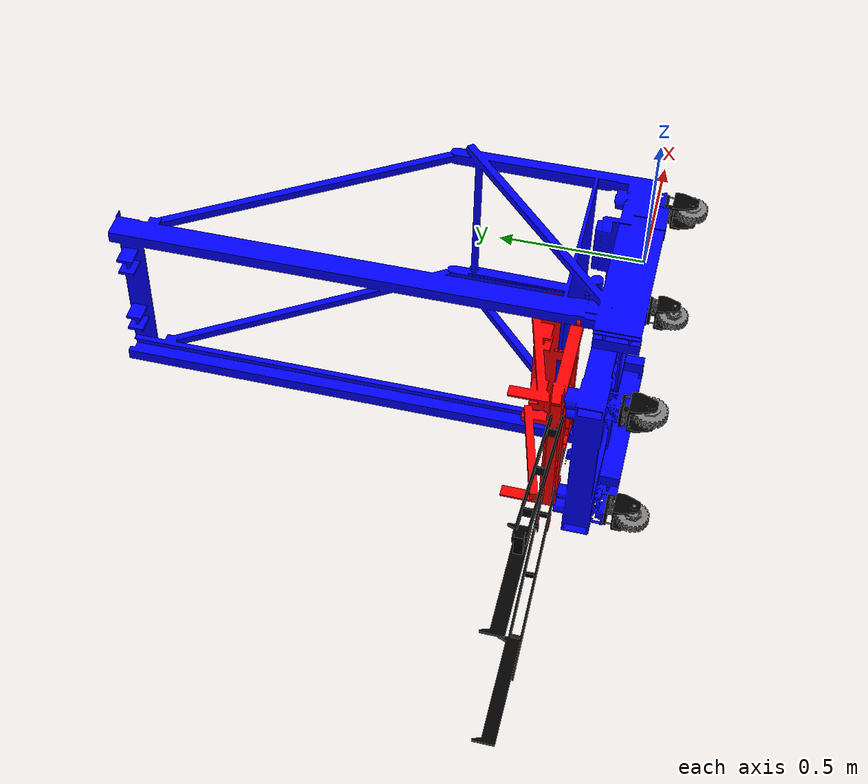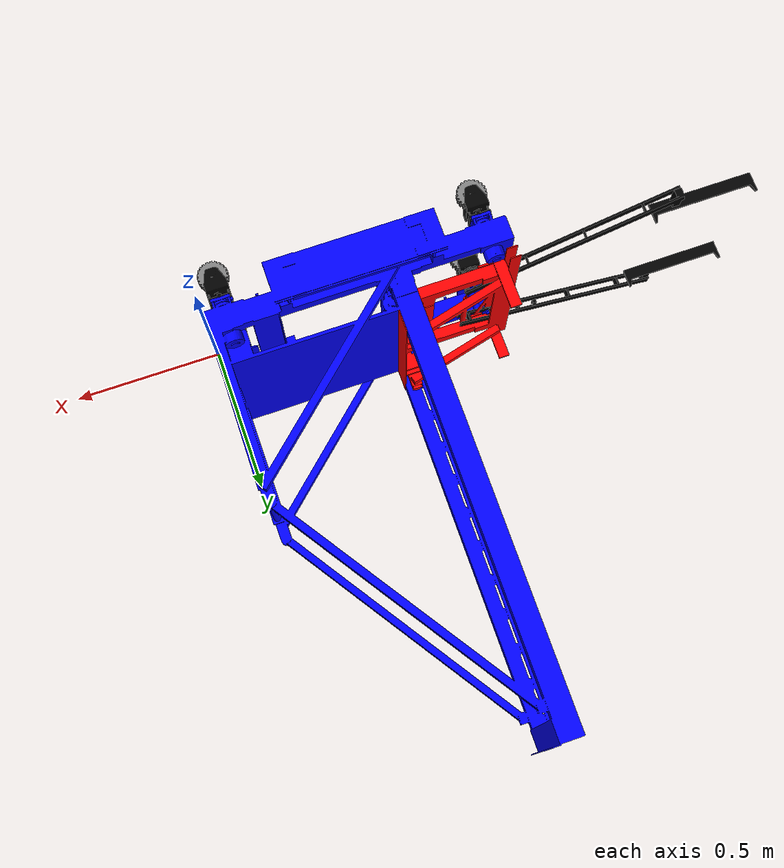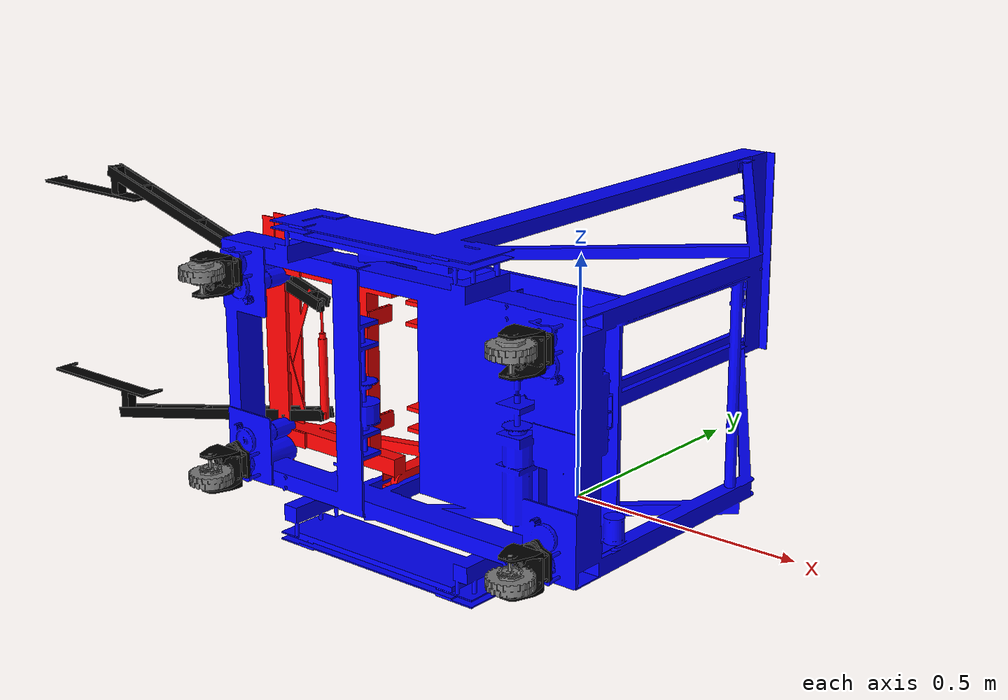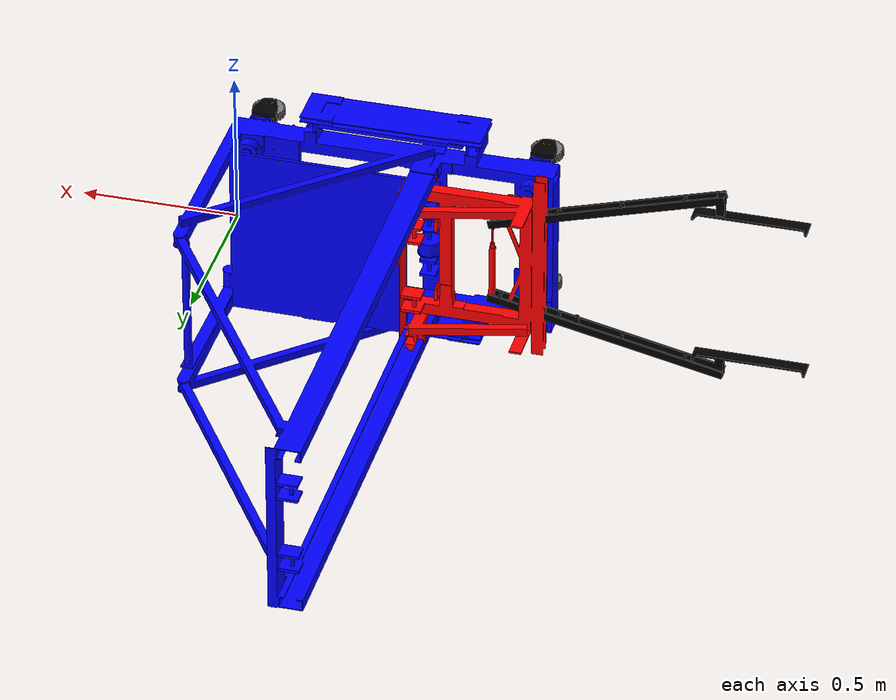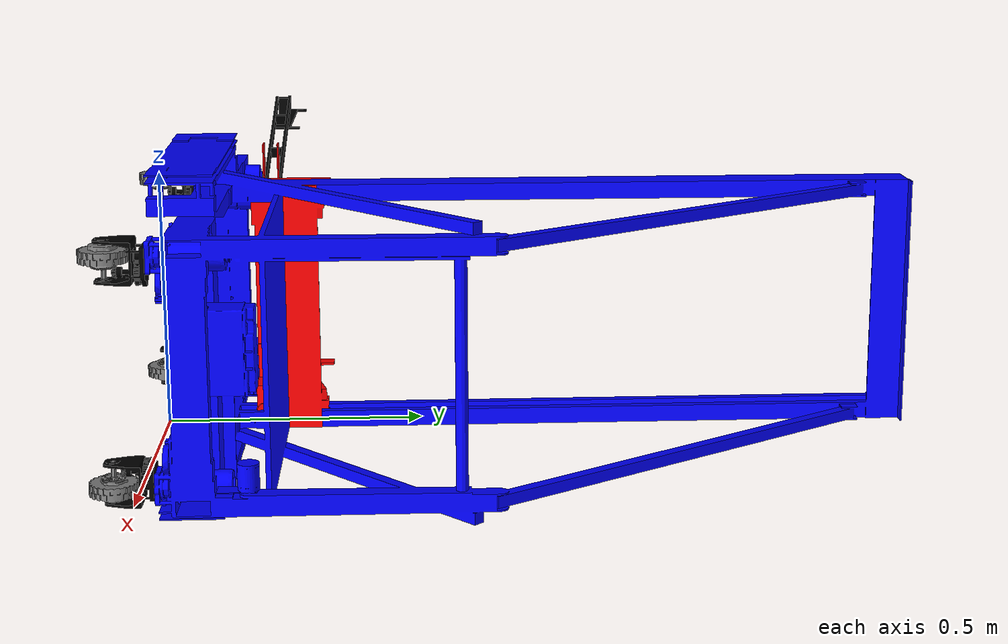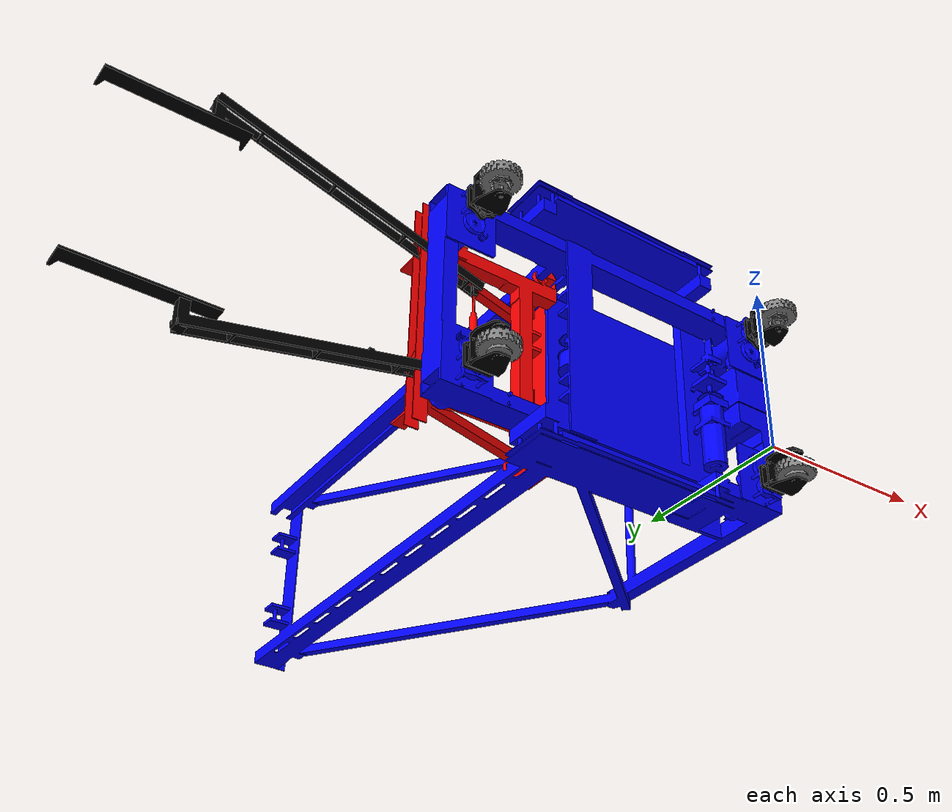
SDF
<?xml version="1.0" encoding="utf-8"?>
<sdf version="1.5">
  <model name="2015-Robot">
    <pose>0 0 -0.205244741154153 0 0 0</pose>
    <plugin name="clock" filename="libclock.so">
      <topic>/gazebo/frc/time</topic>
    </plugin>
    <link name="Chassis">
      <gravity>1</gravity>
      <self_collide>0</self_collide>
      <pose>-0.401025500465737 0.230776991603709 0.286644381625399 0 0 0</pose>
      <must_be_base_link>1</must_be_base_link>
      <velocity_decay>
        <linear>0</linear>
        <angular>0</angular>
      </velocity_decay>
      <inertial>
        <mass>63.5665306425937</mass>
        <pose>0 0 0 0 0 0</pose>
        <inertia>
          <ixx>12.3422869983664</ixx>
          <ixy>0.144478033171119</ixy>
          <ixz>0.0351416687291587</ixz>
          <iyy>9.97756819183086</iyy>
          <iyz>0.0194041878028764</iyz>
          <izz>15.7849892429057</izz>
        </inertia>
      </inertial>
      <collision name="Chassis_collision">
        <pose>-0.582059564363616 -0.323087667293095 0.371697829264734 0 0 0</pose>
        <geometry>
          <mesh>
            <scale>1 1 1</scale>
            <uri>model://2015-Robot/meshes/Chassis_col.STL</uri>
          </mesh>
        </geometry>
        <surface>
          <contact>
            <ode />
          </contact>
          <friction>
            <ode>
              <mu>0</mu>
              <mu2>0</mu2>
            </ode>
          </friction>
        </surface>
      </collision>
      <visual name="Chassis_visual">
        <pose>-0.582059564363616 -0.323087667293095 0.371697829264734 0 0 0</pose>
        <material>
          <ambient>0 0 1 1</ambient>
          <diffuse>0 0 1 1</diffuse>
        </material>
        <geometry>
          <mesh>
            <scale>1 1 1</scale>
            <uri>model://2015-Robot/meshes/Chassis.STL</uri>
          </mesh>
        </geometry>
      </visual>
      <sensor name="ChassisUltrasonic" type="sonar">
        <always_on>1</always_on>
        <visualize>1</visualize>
        <pose>-0.625093566490494 -0.216338403469202 0.0121117011848754 1.57079632679492 0 1.5707963267949</pose>
        <sonar>
          <min>0</min>
          <max>2</max>
          <radius>0.12</radius>
        </sonar>
      </sensor>
    </link>
    <link name="LFPivot">
      <gravity>1</gravity>
      <self_collide>0</self_collide>
      <pose>-0.95870454858405 -0.0736713957466903 0.512629032997598 0 0 0</pose>
      <must_be_base_link>0</must_be_base_link>
      <velocity_decay>
        <linear>0</linear>
        <angular>0</angular>
      </velocity_decay>
      <inertial>
        <mass>1.44739278538339</mass>
        <pose>0 0 0 0 0 0</pose>
        <inertia>
          <ixx>0.00233676058796664</ixx>
          <ixy>6.15567615603567E-07</ixy>
          <ixz>7.63616124093722E-06</ixz>
          <iyy>0.00181599181965529</iyy>
          <iyz>6.17355468187915E-05</iyz>
          <izz>0.00157703325312505</izz>
        </inertia>
      </inertial>
      <collision name="LFPivot_collision">
        <pose>-0.0243805162453027 -0.0186392799426959 0.145713177892535 0 0 0</pose>
        <geometry>
          <mesh>
            <scale>1 1 1</scale>
            <uri>model://2015-Robot/meshes/LFPivot_col.STL</uri>
          </mesh>
        </geometry>
        <surface>
          <contact>
            <ode />
          </contact>
          <friction>
            <ode>
              <mu>0</mu>
              <mu2>0</mu2>
            </ode>
          </friction>
        </surface>
      </collision>
      <visual name="LFPivot_visual">
        <pose>-0.0243805162453027 -0.0186392799426959 0.145713177892535 0 0 0</pose>
        <material>
          <ambient>0 0 0 1</ambient>
          <diffuse>0 0 0 1</diffuse>
        </material>
        <geometry>
          <mesh>
            <scale>1 1 1</scale>
            <uri>model://2015-Robot/meshes/LFPivot.STL</uri>
          </mesh>
        </geometry>
      </visual>
    </link>
    <joint name="Chassis-LFPivot" type="revolute">
      <parent>Chassis</parent>
      <child>LFPivot</child>
      <pose>-0.000145451415950387 0.0438263957466912 0.0144209670024015 0 0 1.5707963267949</pose>
      <axis>
        <xyz>1 -3.85032727000361E-16 0</xyz>
        <dynamics>
          <damping>2</damping>
          <friction>1</friction>
        </dynamics>
        <limit>
          <effort>200</effort>
        </limit>
      </axis>
    </joint>
    <link name="LFWheel">
      <gravity>1</gravity>
      <self_collide>0</self_collide>
      <pose>-0.958861217170619 -0.127825222544386 0.528166733571689 0 0 0</pose>
      <must_be_base_link>0</must_be_base_link>
      <velocity_decay>
        <linear>0</linear>
        <angular>0</angular>
      </velocity_decay>
      <inertial>
        <mass>1.8555319646432</mass>
        <pose>0 0 0 0 0 0</pose>
        <inertia>
          <ixx>0.00118622871860514</ixx>
          <ixy>6.74556798881706E-10</ixy>
          <ixz>7.21215725396255E-06</ixz>
          <iyy>0.00118617044109406</iyy>
          <iyz>3.52253400263471E-08</iyz>
          <izz>0.00190657662977929</izz>
        </inertia>
      </inertial>
      <collision name="LFWheel_collision">
        <pose>-0.0242238476587333 0.0355145468549995 0.130175477318445 0 0 0</pose>
        <geometry>
          <mesh>
            <scale>1 1 1</scale>
            <uri>model://2015-Robot/meshes/LFWheel_col.STL</uri>
          </mesh>
        </geometry>
        <surface>
          <contact>
            <ode />
          </contact>
          <friction>
            <ode>
              <mu>1</mu>
              <mu2>1</mu2>
            </ode>
          </friction>
        </surface>
      </collision>
      <visual name="LFWheel_visual">
        <pose>-0.0242238476587333 0.0355145468549995 0.130175477318445 0 0 0</pose>
        <material>
          <ambient>0.501960784313725 0.501960784313725 0.501960784313725 1</ambient>
          <diffuse>0.501960784313725 0.501960784313725 0.501960784313725 1</diffuse>
        </material>
        <geometry>
          <mesh>
            <scale>1 1 1</scale>
            <uri>model://2015-Robot/meshes/LFWheel.STL</uri>
          </mesh>
        </geometry>
      </visual>
    </link>
    <joint name="LFPivot-LFWheel" type="revolute">
      <parent>LFPivot</parent>
      <child>LFWheel</child>
      <pose>-2.69362340808363E-06 -2.77455613595379E-07 0.000273096813577206 0 1.56078767417446 3.14159265358979</pose>
      <axis>
        <xyz>0.999799660435128 1.09617717515883E-15 -0.0200159684702737</xyz>
        <dynamics>
          <damping>1</damping>
          <friction>1</friction>
        </dynamics>
        <limit>
          <effort>100</effort>
        </limit>
      </axis>
    </joint>
    <link name="RFPivot">
      <gravity>1</gravity>
      <self_collide>0</self_collide>
      <pose>-0.958995053722582 -0.0736748369935368 0.0588735140965105 0 0 0</pose>
      <must_be_base_link>0</must_be_base_link>
      <velocity_decay>
        <linear>0</linear>
        <angular>0</angular>
      </velocity_decay>
      <inertial>
        <mass>1.4475795191339</mass>
        <pose>0 0 0 0 0 0</pose>
        <inertia>
          <ixx>0.0023369686508179</ixx>
          <ixy>6.30923439869121E-07</ixy>
          <ixz>7.62480866374576E-06</ixz>
          <iyy>0.00181606645789441</iyy>
          <iyz>6.16372020802289E-05</iyz>
          <izz>0.00157717026566569</izz>
        </inertia>
      </inertial>
      <collision name="RFPivot_collision">
        <pose>-0.0240900111067707 -0.0186358386958493 0.599468696793623 0 0 0</pose>
        <geometry>
          <mesh>
            <scale>1 1 1</scale>
            <uri>model://2015-Robot/meshes/RFPivot_col.STL</uri>
          </mesh>
        </geometry>
        <surface>
          <contact>
            <ode />
          </contact>
          <friction>
            <ode>
              <mu>0</mu>
              <mu2>0</mu2>
            </ode>
          </friction>
        </surface>
      </collision>
      <visual name="RFPivot_visual">
        <pose>-0.0240900111067707 -0.0186358386958493 0.599468696793623 0 0 0</pose>
        <material>
          <ambient>0 0 0 1</ambient>
          <diffuse>0 0 0 1</diffuse>
        </material>
        <geometry>
          <mesh>
            <scale>1 1 1</scale>
            <uri>model://2015-Robot/meshes/RFPivot.STL</uri>
          </mesh>
        </geometry>
      </visual>
    </link>
    <joint name="Chassis-RFPivot" type="revolute">
      <parent>Chassis</parent>
      <child>RFPivot</child>
      <pose>0.000145053722581917 0.0438298369935367 -0.0144235140965107 0 0 1.5707963267949</pose>
      <axis>
        <xyz>1 2.22044604925031E-16 0</xyz>
        <dynamics>
          <damping>2</damping>
          <friction>1</friction>
        </dynamics>
        <limit>
          <effort>200</effort>
        </limit>
      </axis>
    </joint>
    <link name="RFWheel">
      <gravity>1</gravity>
      <self_collide>0</self_collide>
      <pose>-0.958838782829381 -0.127825222544386 0.0433332664283111 0 0 0</pose>
      <must_be_base_link>0</must_be_base_link>
      <velocity_decay>
        <linear>0</linear>
        <angular>0</angular>
      </velocity_decay>
      <inertial>
        <mass>1.8555319646432</mass>
        <pose>0 0 0 0 0 0</pose>
        <inertia>
          <ixx>0.00118622871860514</ixx>
          <ixy>6.74556799077305E-10</ixy>
          <ixz>7.21215725396224E-06</ixz>
          <iyy>0.00118617044109405</iyy>
          <iyz>3.52253400264321E-08</iyz>
          <izz>0.00190657662977929</izz>
        </inertia>
      </inertial>
      <collision name="RFWheel_collision">
        <pose>-0.0242462819999717 0.0355145468550003 0.615008944461822 0 0 0</pose>
        <geometry>
          <mesh>
            <scale>1 1 1</scale>
            <uri>model://2015-Robot/meshes/RFWheel_col.STL</uri>
          </mesh>
        </geometry>
        <surface>
          <contact>
            <ode />
          </contact>
          <friction>
            <ode>
              <mu>1</mu>
              <mu2>1</mu2>
            </ode>
          </friction>
        </surface>
      </collision>
      <visual name="RFWheel_visual">
        <pose>-0.0242462819999717 0.0355145468550003 0.615008944461822 0 0 0</pose>
        <material>
          <ambient>0.501960784313725 0.501960784313725 0.501960784313725 1</ambient>
          <diffuse>0.501960784313725 0.501960784313725 0.501960784313725 1</diffuse>
        </material>
        <geometry>
          <mesh>
            <scale>1 1 1</scale>
            <uri>model://2015-Robot/meshes/RFWheel.STL</uri>
          </mesh>
        </geometry>
      </visual>
    </link>
    <joint name="RFPivot-RFWheel" type="revolute">
      <parent>RFPivot</parent>
      <child>RFWheel</child>
      <pose>2.69362340823281E-06 -2.77455613546806E-07 -0.000273096813577234 0 4.72239763300511 6.28318530717959</pose>
      <axis>
        <xyz>0.999799660435128 -1.10429877207449E-15 0.0200159684702621</xyz>
        <dynamics>
          <damping>1</damping>
          <friction>1</friction>
        </dynamics>
        <limit>
          <effort>100</effort>
        </limit>
      </axis>
    </joint>
    <link name="LRPivot">
      <gravity>1</gravity>
      <self_collide>0</self_collide>
      <pose>-0.0697049462774184 -0.0736748369935357 0.512626485903489 0 0 0</pose>
      <must_be_base_link>0</must_be_base_link>
      <velocity_decay>
        <linear>0</linear>
        <angular>0</angular>
      </velocity_decay>
      <inertial>
        <mass>1.4475795191339</mass>
        <pose>0 0 0 0 0 0</pose>
        <inertia>
          <ixx>0.0023369686508179</ixx>
          <ixy>6.30923439866244E-07</ixy>
          <ixz>7.6248086637477E-06</ixz>
          <iyy>0.00181606645789441</iyy>
          <iyz>6.16372020802319E-05</iyz>
          <izz>0.00157717026566569</izz>
        </inertia>
      </inertial>
      <collision name="LRPivot_collision">
        <pose>-0.913380118551934 -0.0186358386958504 0.145715724986644 0 0 0</pose>
        <geometry>
          <mesh>
            <scale>1 1 1</scale>
            <uri>model://2015-Robot/meshes/LRPivot_col.STL</uri>
          </mesh>
        </geometry>
        <surface>
          <contact>
            <ode />
          </contact>
          <friction>
            <ode>
              <mu>0</mu>
              <mu2>0</mu2>
            </ode>
          </friction>
        </surface>
      </collision>
      <visual name="LRPivot_visual">
        <pose>-0.913380118551934 -0.0186358386958504 0.145715724986644 0 0 0</pose>
        <material>
          <ambient>0 0 0 1</ambient>
          <diffuse>0 0 0 1</diffuse>
        </material>
        <geometry>
          <mesh>
            <scale>1 1 1</scale>
            <uri>model://2015-Robot/meshes/LRPivot.STL</uri>
          </mesh>
        </geometry>
      </visual>
    </link>
    <joint name="Chassis-LRPivot" type="revolute">
      <parent>Chassis</parent>
      <child>LRPivot</child>
      <pose>-0.000145053722581889 0.0531643369935366 0.0144235140965104 0 0 1.5707963267949</pose>
      <axis>
        <xyz>1 2.22044604925031E-16 0</xyz>
        <dynamics>
          <damping>2</damping>
          <friction>1</friction>
        </dynamics>
        <limit>
          <effort>200</effort>
        </limit>
      </axis>
    </joint>
    <link name="LRWheel">
      <gravity>1</gravity>
      <self_collide>0</self_collide>
      <pose>-0.0698612171706193 -0.127825222544386 0.528166733571689 0 0 0</pose>
      <must_be_base_link>0</must_be_base_link>
      <velocity_decay>
        <linear>0</linear>
        <angular>0</angular>
      </velocity_decay>
      <inertial>
        <mass>1.85553196464319</mass>
        <pose>0 0 0 0 0 0</pose>
        <inertia>
          <ixx>0.00118622871860513</ixx>
          <ixy>6.7455680023538E-10</ixy>
          <ixz>7.21215725396253E-06</ixz>
          <iyy>0.00118617044109405</iyy>
          <iyz>3.52253400263866E-08</iyz>
          <izz>0.00190657662977928</izz>
        </inertia>
      </inertial>
      <collision name="LRWheel_collision">
        <pose>-0.913223847658733 0.0355145468549996 0.130175477318445 0 0 0</pose>
        <geometry>
          <mesh>
            <scale>1 1 1</scale>
            <uri>model://2015-Robot/meshes/LRWheel_col.STL</uri>
          </mesh>
        </geometry>
        <surface>
          <contact>
            <ode />
          </contact>
          <friction>
            <ode>
              <mu>1</mu>
              <mu2>1</mu2>
            </ode>
          </friction>
        </surface>
      </collision>
      <visual name="LRWheel_visual">
        <pose>-0.913223847658733 0.0355145468549996 0.130175477318445 0 0 0</pose>
        <material>
          <ambient>0.501960784313725 0.501960784313725 0.501960784313725 1</ambient>
          <diffuse>0.501960784313725 0.501960784313725 0.501960784313725 1</diffuse>
        </material>
        <geometry>
          <mesh>
            <scale>1 1 1</scale>
            <uri>model://2015-Robot/meshes/LRWheel.STL</uri>
          </mesh>
        </geometry>
      </visual>
    </link>
    <joint name="LRPivot-LRWheel" type="revolute">
      <parent>LRPivot</parent>
      <child>LRWheel</child>
      <pose>-2.69362340865609E-06 -2.7745561408804E-07 0.000273096813577484 0 1.56078767417446 3.14159265358979</pose>
      <axis>
        <xyz>0.999799660435128 1.09617717515883E-15 -0.0200159684702739</xyz>
        <dynamics>
          <damping>1</damping>
          <friction>1</friction>
        </dynamics>
        <limit>
          <effort>100</effort>
        </limit>
      </axis>
    </joint>
    <link name="RRPivot">
      <gravity>1</gravity>
      <self_collide>0</self_collide>
      <pose>-0.0699950537225819 -0.0743653184534709 0.0588735140965106 0 0 0</pose>
      <must_be_base_link>0</must_be_base_link>
      <velocity_decay>
        <linear>0</linear>
        <angular>0</angular>
      </velocity_decay>
      <inertial>
        <mass>1.44757951913391</mass>
        <pose>0 0 0 0 0 0</pose>
        <inertia>
          <ixx>0.00233696865081792</ixx>
          <ixy>6.30923439868601E-07</ixy>
          <ixz>7.62480866374975E-06</ixz>
          <iyy>0.00181606645789442</iyy>
          <iyz>6.16372020802251E-05</iyz>
          <izz>0.0015771702656657</izz>
        </inertia>
      </inertial>
      <collision name="RRPivot_collision">
        <pose>-0.913090011106771 -0.0179453572359152 0.599468696793623 0 0 0</pose>
        <geometry>
          <mesh>
            <scale>1 1 1</scale>
            <uri>model://2015-Robot/meshes/RRPivot_col.STL</uri>
          </mesh>
        </geometry>
        <surface>
          <contact>
            <ode />
          </contact>
          <friction>
            <ode>
              <mu>0</mu>
              <mu2>0</mu2>
            </ode>
          </friction>
        </surface>
      </collision>
      <visual name="RRPivot_visual">
        <pose>-0.913090011106771 -0.0179453572359152 0.599468696793623 0 0 0</pose>
        <material>
          <ambient>0 0 0 1</ambient>
          <diffuse>0 0 0 1</diffuse>
        </material>
        <geometry>
          <mesh>
            <scale>1 1 1</scale>
            <uri>model://2015-Robot/meshes/RRPivot.STL</uri>
          </mesh>
        </geometry>
      </visual>
    </link>
    <joint name="Chassis-RRPivot" type="revolute">
      <parent>Chassis</parent>
      <child>RRPivot</child>
      <pose>0.000145053722581889 0.0438298369935369 -0.0144235140965108 0 0 1.5707963267949</pose>
      <axis>
        <xyz>1 2.22044604925031E-16 0</xyz>
        <dynamics>
          <damping>2</damping>
          <friction>1</friction>
        </dynamics>
        <limit>
          <effort>200</effort>
        </limit>
      </axis>
    </joint>
    <link name="RRWheel">
      <gravity>1</gravity>
      <self_collide>0</self_collide>
      <pose>-0.0698387828293809 -0.12851570400432 0.043333266428311 0 0 0</pose>
      <must_be_base_link>0</must_be_base_link>
      <velocity_decay>
        <linear>0</linear>
        <angular>0</angular>
      </velocity_decay>
      <inertial>
        <mass>1.8555319646432</mass>
        <pose>0 0 0 0 0 0</pose>
        <inertia>
          <ixx>0.00118622871860513</ixx>
          <ixy>6.74556797103717E-10</ixy>
          <ixz>7.21215725396294E-06</ixz>
          <iyy>0.00118617044109406</iyy>
          <iyz>3.52253400268494E-08</iyz>
          <izz>0.00190657662977928</izz>
        </inertia>
      </inertial>
      <collision name="RRWheel_collision">
        <pose>-0.913246281999972 0.0362050283149341 0.615008944461822 0 0 0</pose>
        <geometry>
          <mesh>
            <scale>1 1 1</scale>
            <uri>model://2015-Robot/meshes/RRWheel_col.STL</uri>
          </mesh>
        </geometry>
        <surface>
          <contact>
            <ode />
          </contact>
          <friction>
            <ode>
              <mu>1</mu>
              <mu2>1</mu2>
            </ode>
          </friction>
        </surface>
      </collision>
      <visual name="RRWheel_visual">
        <pose>-0.913246281999972 0.0362050283149341 0.615008944461822 0 0 0</pose>
        <material>
          <ambient>0.501960784313725 0.501960784313725 0.501960784313725 1</ambient>
          <diffuse>0.501960784313725 0.501960784313725 0.501960784313725 1</diffuse>
        </material>
        <geometry>
          <mesh>
            <scale>1 1 1</scale>
            <uri>model://2015-Robot/meshes/RRWheel.STL</uri>
          </mesh>
        </geometry>
      </visual>
    </link>
    <joint name="RRPivot-RRWheel" type="revolute">
      <parent>RRPivot</parent>
      <child>RRWheel</child>
      <pose>2.69362340810098E-06 -2.77455613782729E-07 -0.000273096813577345 0 4.72239763300511 6.28318530717959</pose>
      <axis>
        <xyz>0.999799660435128 -1.10429877207449E-15 0.0200159684702625</xyz>
        <dynamics>
          <damping>1</damping>
          <friction>1</friction>
        </dynamics>
        <limit>
          <effort>100</effort>
        </limit>
      </axis>
    </joint>
    <link name="Lifter">
      <gravity>1</gravity>
      <self_collide>0</self_collide>
      <pose>-0.778431631238913 0.167442853370672 0.285191434881006 0 0 0</pose>
      <must_be_base_link>0</must_be_base_link>
      <velocity_decay>
        <linear>0</linear>
        <angular>0</angular>
      </velocity_decay>
      <inertial>
        <mass>9.51516761753436</mass>
        <pose>0 0 0 0 0 0</pose>
        <inertia>
          <ixx>0.366432066309504</ixx>
          <ixy>0.0224471545650555</ixy>
          <ixz>0.000354531949222565</ixz>
          <iyy>0.509257457339072</iyy>
          <iyz>0.000268897304813689</iyz>
          <izz>0.183457975180987</izz>
        </inertia>
      </inertial>
      <collision name="Lifter_collision">
        <pose>-0.20465343359044 -0.259753529060058 0.373150776009127 0 0 0</pose>
        <geometry>
          <mesh>
            <scale>1 1 1</scale>
            <uri>model://2015-Robot/meshes/Lifter_col.STL</uri>
          </mesh>
        </geometry>
        <surface>
          <contact>
            <ode />
          </contact>
          <friction>
            <ode>
              <mu>1</mu>
              <mu2>1</mu2>
            </ode>
          </friction>
        </surface>
      </collision>
      <visual name="Lifter_visual">
        <pose>-0.20465343359044 -0.259753529060058 0.373150776009127 0 0 0</pose>
        <material>
          <ambient>1 0 0 1</ambient>
          <diffuse>1 0 0 1</diffuse>
        </material>
        <geometry>
          <mesh>
            <scale>1 1 1</scale>
            <uri>model://2015-Robot/meshes/Lifter.STL</uri>
          </mesh>
        </geometry>
      </visual>
      <sensor name="LifterCamera" type="camera">
        <visualize>1</visualize>
        <always_on>1</always_on>
        <pose>-0.208993368761087 -0.029242708536449 0.000558565119000154 1.5707963267949 0 3.14159265358979</pose>
        <camera name="Liftercamera">
          <horizontal_fov>1.5707963267949</horizontal_fov>
          <image>
            <width>320</width>
            <height>240</height>
          </image>
          <clip>
            <near>0.1</near>
            <far>100</far>
          </clip>
          <save enabled="true">
              <path>/tmp/shooter-camera</path>
          </save>
        </camera>
      </sensor>
    </link>
    <joint name="Chassis-Lifter" type="prismatic">
      <parent>Chassis</parent>
      <child>Lifter</child>
      <pose>0.143431631238934 -0.091242853370672 -0.265238202122385 0 0 1.5707963267949</pose>
      <axis>
        <xyz>1 2.22044604925031E-16 0</xyz>
        <dynamics>
          <damping>100</damping>
          <friction>5</friction>
        </dynamics>
        <limit>
          <upper>1.5</upper>
          <lower>0</lower>
          <effort>200</effort>
        </limit>
      </axis>
    </joint>
    <link name="LeftArm">
      <gravity>1</gravity>
      <self_collide>0</self_collide>
      <pose>-1.34324627354824 0.13446315869893 0.543380507029937 0 0 0</pose>
      <must_be_base_link>0</must_be_base_link>
      <velocity_decay>
        <linear>0</linear>
        <angular>0</angular>
      </velocity_decay>
      <inertial>
        <mass>1.11345618276179</mass>
        <pose>0 0 0 0 0 0</pose>
        <inertia>
          <ixx>0.00432018256891324</ixx>
          <ixy>0.00022411717574954</ixy>
          <ixz>0.0161290230269331</ixz>
          <iyy>0.0877261629901876</iyy>
          <iyz>2.53556399443232E-05</iyz>
          <izz>0.0839126397533981</izz>
        </inertia>
      </inertial>
      <collision name="LeftArm_collision">
        <pose>0.36016120871889 -0.226773834388316 0.114961703860196 0 0 0</pose>
        <geometry>
          <mesh>
            <scale>1 1 1</scale>
            <uri>model://2015-Robot/meshes/LeftArm_col.STL</uri>
          </mesh>
        </geometry>
        <surface>
          <contact>
            <ode />
          </contact>
          <friction>
            <ode>
              <mu>1</mu>
              <mu2>1</mu2>
            </ode>
          </friction>
        </surface>
      </collision>
      <visual name="LeftArm_visual">
        <pose>0.36016120871889 -0.226773834388316 0.114961703860196 0 0 0</pose>
        <material>
          <ambient>0 0 0 1</ambient>
          <diffuse>0 0 0 1</diffuse>
        </material>
        <geometry>
          <mesh>
            <scale>1 1 1</scale>
            <uri>model://2015-Robot/meshes/LeftArm.STL</uri>
          </mesh>
        </geometry>
      </visual>
    </link>
    <joint name="Lifter-LeftArm" type="revolute">
      <parent>Lifter</parent>
      <child>LeftArm</child>
      <pose>0.378046273548243 -0.0273780138647068 -0.0885719385781383 0 6.28318530717959 1.5707963267949</pose>
      <axis>
        <xyz>1 3.91279831349304E-16 4.22475028006071E-16</xyz>
        <dynamics>
          <damping>0</damping>
          <friction>0</friction>
        </dynamics>
        <limit>
          <upper>0.2</upper>
          <lower>-0.1</lower>
          <effort>200</effort>
        </limit>
      </axis>
    </joint>
    <link name="RightArm">
      <gravity>1</gravity>
      <self_collide>0</self_collide>
      <pose>-1.3524125718207 0.13453340179875 0.0630423931521605 0 0 0</pose>
      <must_be_base_link>0</must_be_base_link>
      <velocity_decay>
        <linear>0</linear>
        <angular>0</angular>
      </velocity_decay>
      <inertial>
        <mass>1.11319136820711</mass>
        <pose>0 0 0 0 0 0</pose>
        <inertia>
          <ixx>0.00227926764450931</ixx>
          <ixy>0.00021118413406714</ixy>
          <ixz>0.0103876838867992</ixz>
          <iyy>0.0868096234739407</iyy>
          <iyz>7.41904465918707E-06</iyz>
          <izz>0.0850385930782833</izz>
        </inertia>
      </inertial>
      <collision name="RightArm_collision">
        <pose>0.369327506991351 -0.226844077488136 0.595299817737973 0 0 0</pose>
        <geometry>
          <mesh>
            <scale>1 1 1</scale>
            <uri>model://2015-Robot/meshes/RightArm_col.STL</uri>
          </mesh>
        </geometry>
        <surface>
          <contact>
            <ode />
          </contact>
          <friction>
            <ode>
              <mu>1</mu>
              <mu2>1</mu2>
            </ode>
          </friction>
        </surface>
      </collision>
      <visual name="RightArm_visual">
        <pose>0.369327506991351 -0.226844077488136 0.595299817737973 0 0 0</pose>
        <material>
          <ambient>0 0 0 1</ambient>
          <diffuse>0 0 0 1</diffuse>
        </material>
        <geometry>
          <mesh>
            <scale>1 1 1</scale>
            <uri>model://2015-Robot/meshes/RightArm.STL</uri>
          </mesh>
        </geometry>
      </visual>
    </link>
    <joint name="Lifter-RightArm" type="revolute">
      <parent>Lifter</parent>
      <child>RightArm</child>
      <pose>0.387212571820704 -0.0274482569645268 0.0615661752996385 0 0 4.71238898038469</pose>
      <axis>
        <xyz>1 2.22044604925031E-16 0</xyz>
        <dynamics>
          <damping>0</damping>
          <friction>0</friction>
        </dynamics>
        <limit>
          <upper>0.2</upper>
          <lower>-0.1</lower>
          <effort>200</effort>
        </limit>
      </axis>
    </joint>
    <plugin name="Chassis_rangefinder" filename="librangefinder.so">
      <topic>/gazebo/frc/simulator/analog/6</topic>
      <sensor>ChassisUltrasonic</sensor>
    </plugin>
    <plugin name="Chassis-LFPivot_motor" filename="libdc_motor.so">
      <joint>Chassis-LFPivot</joint>
      <topic>/gazebo/frc/simulator/pwm/5</topic>
      <multiplier>25</multiplier>
    </plugin>
    <plugin name="Chassis-LFPivot_encoder" filename="libencoder.so">
      <joint>Chassis-LFPivot</joint>
      <topic>/gazebo/frc/simulator/dio/9/10</topic>
      <units>degrees</units>
    </plugin>
    <plugin name="LFPivot-LFWheel_motor" filename="libdc_motor.so">
      <joint>LFPivot-LFWheel</joint>
      <topic>/gazebo/frc/simulator/pwm/1</topic>
      <multiplier>25</multiplier>
    </plugin>
    <plugin name="LFPivot-LFWheel_encoder" filename="libencoder.so">
      <joint>LFPivot-LFWheel</joint>
      <topic>/gazebo/frc/simulator/dio/1/2</topic>
      <units>degrees</units>
    </plugin>
    <plugin name="Chassis-RFPivot_motor" filename="libdc_motor.so">
      <joint>Chassis-RFPivot</joint>
      <topic>/gazebo/frc/simulator/pwm/7</topic>
      <multiplier>25</multiplier>
    </plugin>
    <plugin name="Chassis-RFPivot_encoder" filename="libencoder.so">
      <joint>Chassis-RFPivot</joint>
      <topic>/gazebo/frc/simulator/dio/13/14</topic>
      <units>degrees</units>
    </plugin>
    <plugin name="RFPivot-RFWheel_motor" filename="libdc_motor.so">
      <joint>RFPivot-RFWheel</joint>
      <topic>/gazebo/frc/simulator/pwm/3</topic>
      <multiplier>25</multiplier>
    </plugin>
    <plugin name="RFPivot-RFWheel_encoder" filename="libencoder.so">
      <joint>RFPivot-RFWheel</joint>
      <topic>/gazebo/frc/simulator/dio/5/6</topic>
      <units>degrees</units>
    </plugin>
    <plugin name="Chassis-LRPivot_motor" filename="libdc_motor.so">
      <joint>Chassis-LRPivot</joint>
      <topic>/gazebo/frc/simulator/pwm/6</topic>
      <multiplier>25</multiplier>
    </plugin>
    <plugin name="Chassis-LRPivot_encoder" filename="libencoder.so">
      <joint>Chassis-LRPivot</joint>
      <topic>/gazebo/frc/simulator/dio/11/12</topic>
      <units>degrees</units>
    </plugin>
    <plugin name="LRPivot-LRWheel_motor" filename="libdc_motor.so">
      <joint>LRPivot-LRWheel</joint>
      <topic>/gazebo/frc/simulator/pwm/2</topic>
      <multiplier>25</multiplier>
    </plugin>
    <plugin name="LRPivot-LRWheel_encoder" filename="libencoder.so">
      <joint>LRPivot-LRWheel</joint>
      <topic>/gazebo/frc/simulator/dio/3/4</topic>
      <units>degrees</units>
    </plugin>
    <plugin name="Chassis-RRPivot_motor" filename="libdc_motor.so">
      <joint>Chassis-RRPivot</joint>
      <topic>/gazebo/frc/simulator/pwm/8</topic>
      <multiplier>25</multiplier>
    </plugin>
    <plugin name="Chassis-RRPivot_encoder" filename="libencoder.so">
      <joint>Chassis-RRPivot</joint>
      <topic>/gazebo/frc/simulator/dio/15/16</topic>
      <units>degrees</units>
    </plugin>
    <plugin name="RRPivot-RRWheel_motor" filename="libdc_motor.so">
      <joint>RRPivot-RRWheel</joint>
      <topic>/gazebo/frc/simulator/pwm/4</topic>
      <multiplier>25</multiplier>
    </plugin>
    <plugin name="RRPivot-RRWheel_encoder" filename="libencoder.so">
      <joint>RRPivot-RRWheel</joint>
      <topic>/gazebo/frc/simulator/dio/7/8</topic>
      <units>degrees</units>
    </plugin>
    <plugin name="Chassis-Lifter_motor" filename="libdc_motor.so">
      <joint>Chassis-Lifter</joint>
      <topic>/gazebo/frc/simulator/pwm/9</topic>
      <multiplier>400</multiplier>
    </plugin>
    <plugin name="Chassis-Lifter_encoder" filename="libencoder.so">
      <joint>Chassis-Lifter</joint>
      <topic>/gazebo/frc/simulator/dio/17/18</topic>
      <units>degrees</units>
    </plugin>
    <plugin name="Lifter-LeftArm_motor" filename="libdc_motor.so">
      <joint>Lifter-LeftArm</joint>
      <topic>/gazebo/frc/simulator/pwm/10</topic>
      <multiplier>200</multiplier>
    </plugin>
    <plugin name="Lifter-RightArm_motor" filename="libdc_motor.so">
      <joint>Lifter-RightArm</joint>
      <topic>/gazebo/frc/simulator/pwm/10</topic>
      <multiplier>200</multiplier>
    </plugin>
  </model>
</sdf>
